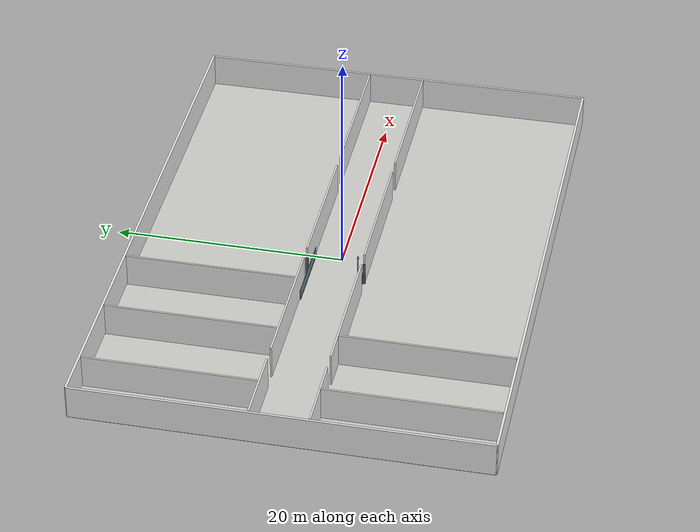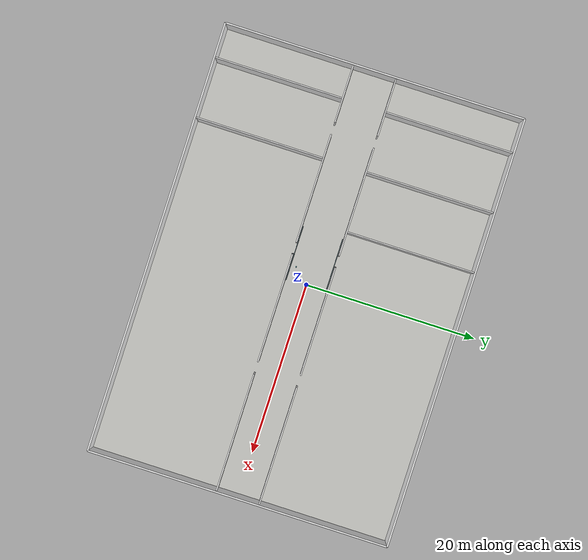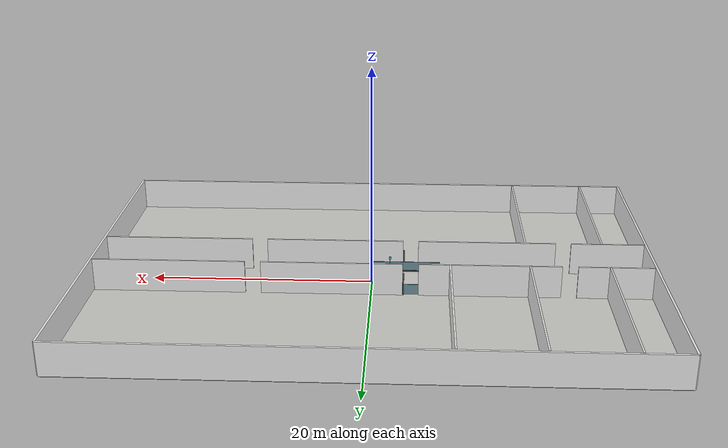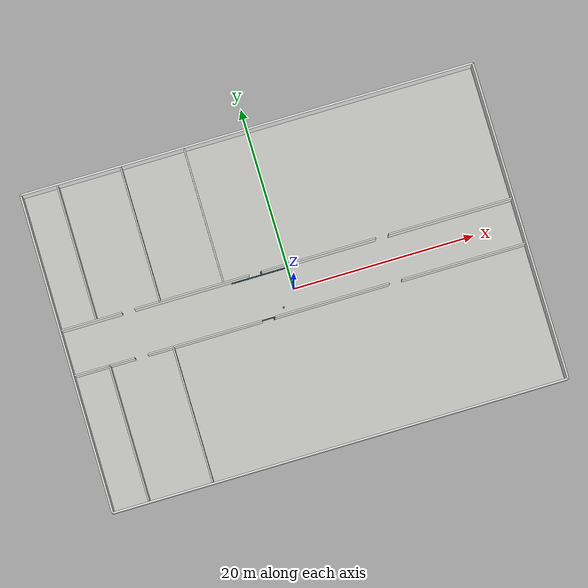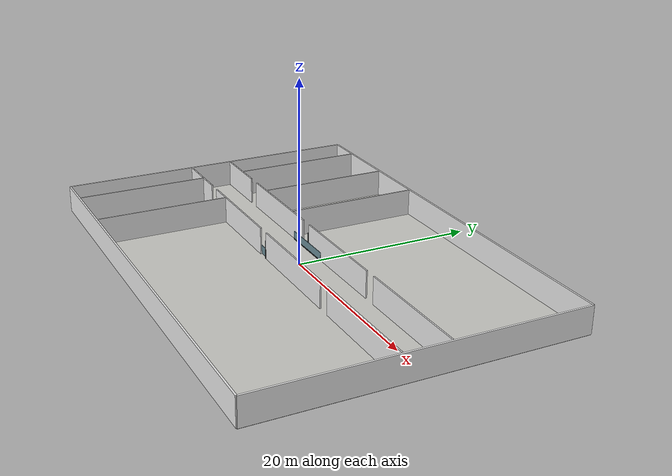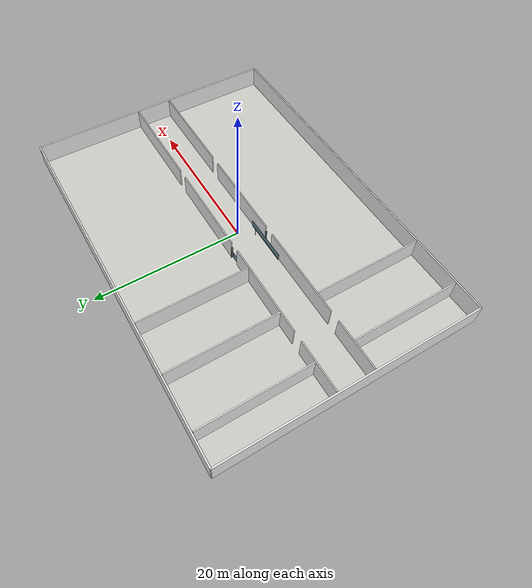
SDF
<sdf version="1.6">
 <world name="hospital">
  <include><uri>model://sun</uri></include>
  <model name="floor">
   <static>true</static>
   <link name="link">
    <pose>0 0 -0.05 0 0 0</pose>
    <collision name="c"><geometry><box><size>50 35 0.1</size></box></geometry></collision>
    <visual name="v">
     <geometry><box><size>50 35 0.1</size></box></geometry>
     <material>
      <script><uri>file://media/materials/scripts/gazebo.material</uri><name>Gazebo/CeilingTiled</name></script>
     </material>
    </visual>
   </link>
  </model>
  <model name="wall_n">
   <static>true</static>
   <link name="link">
    <pose>0 17.5 1.5 0 0 0</pose>
    <collision name="c"><geometry><box><size>50 0.2 3</size></box></geometry></collision>
    <visual name="v">
     <geometry><box><size>50 0.2 3</size></box></geometry>
     <material>
      <script><uri>file://media/materials/scripts/gazebo.material</uri><name>Gazebo/White</name></script>
     </material>
    </visual>
   </link>
  </model>
  <model name="wall_s">
   <static>true</static>
   <link name="link">
    <pose>0 -17.5 1.5 0 0 0</pose>
    <collision name="c"><geometry><box><size>50 0.2 3</size></box></geometry></collision>
    <visual name="v">
     <geometry><box><size>50 0.2 3</size></box></geometry>
     <material>
      <script><uri>file://media/materials/scripts/gazebo.material</uri><name>Gazebo/White</name></script>
     </material>
    </visual>
   </link>
  </model>
  <model name="wall_e">
   <static>true</static>
   <link name="link">
    <pose>25 0 1.5 0 0 0</pose>
    <collision name="c"><geometry><box><size>0.2 35 3</size></box></geometry></collision>
    <visual name="v">
     <geometry><box><size>0.2 35 3</size></box></geometry>
     <material>
      <script><uri>file://media/materials/scripts/gazebo.material</uri><name>Gazebo/White</name></script>
     </material>
    </visual>
   </link>
  </model>
  <model name="wall_w">
   <static>true</static>
   <link name="link">
    <pose>-25 0 1.5 0 0 0</pose>
    <collision name="c"><geometry><box><size>0.2 35 3</size></box></geometry></collision>
    <visual name="v">
     <geometry><box><size>0.2 35 3</size></box></geometry>
     <material>
      <script><uri>file://media/materials/scripts/gazebo.material</uri><name>Gazebo/White</name></script>
     </material>
    </visual>
   </link>
  </model>
  <model name="cw_25_1">
   <static>true</static>
   <link name="link">
    <pose>-21.525 2.5 1.5 0 0 0</pose>
    <collision name="c"><geometry><box><size>6.65 0.15 3</size></box></geometry></collision>
    <visual name="v">
     <geometry><box><size>6.65 0.15 3</size></box></geometry>
     <material>
      <script><uri>file://media/materials/scripts/gazebo.material</uri><name>Gazebo/White</name></script>
     </material>
    </visual>
   </link>
  </model>
  <model name="cw_25_2">
   <static>true</static>
   <link name="link">
    <pose>-10.5 2.5 1.5 0 0 0</pose>
    <collision name="c"><geometry><box><size>12.6 0.15 3</size></box></geometry></collision>
    <visual name="v">
     <geometry><box><size>12.6 0.15 3</size></box></geometry>
     <material>
      <script><uri>file://media/materials/scripts/gazebo.material</uri><name>Gazebo/White</name></script>
     </material>
    </visual>
   </link>
  </model>
  <model name="cw_25_3">
   <static>true</static>
   <link name="link">
    <pose>3.5 2.5 1.5 0 0 0</pose>
    <collision name="c"><geometry><box><size>12.6 0.15 3</size></box></geometry></collision>
    <visual name="v">
     <geometry><box><size>12.6 0.15 3</size></box></geometry>
     <material>
      <script><uri>file://media/materials/scripts/gazebo.material</uri><name>Gazebo/White</name></script>
     </material>
    </visual>
   </link>
  </model>
  <model name="cw_25_end">
   <static>true</static>
   <link name="link">
    <pose>18.025 2.5 1.5 0 0 0</pose>
    <collision name="c"><geometry><box><size>13.65 0.15 3</size></box></geometry></collision>
    <visual name="v">
     <geometry><box><size>13.65 0.15 3</size></box></geometry>
     <material>
      <script><uri>file://media/materials/scripts/gazebo.material</uri><name>Gazebo/White</name></script>
     </material>
    </visual>
   </link>
  </model>
  <model name="cw_-25_1">
   <static>true</static>
   <link name="link">
    <pose>-21.525 -2.5 1.5 0 0 0</pose>
    <collision name="c"><geometry><box><size>6.65 0.15 3</size></box></geometry></collision>
    <visual name="v">
     <geometry><box><size>6.65 0.15 3</size></box></geometry>
     <material>
      <script><uri>file://media/materials/scripts/gazebo.material</uri><name>Gazebo/White</name></script>
     </material>
    </visual>
   </link>
  </model>
  <model name="cw_-25_2">
   <static>true</static>
   <link name="link">
    <pose>-10.5 -2.5 1.5 0 0 0</pose>
    <collision name="c"><geometry><box><size>12.6 0.15 3</size></box></geometry></collision>
    <visual name="v">
     <geometry><box><size>12.6 0.15 3</size></box></geometry>
     <material>
      <script><uri>file://media/materials/scripts/gazebo.material</uri><name>Gazebo/White</name></script>
     </material>
    </visual>
   </link>
  </model>
  <model name="cw_-25_3">
   <static>true</static>
   <link name="link">
    <pose>3.5 -2.5 1.5 0 0 0</pose>
    <collision name="c"><geometry><box><size>12.6 0.15 3</size></box></geometry></collision>
    <visual name="v">
     <geometry><box><size>12.6 0.15 3</size></box></geometry>
     <material>
      <script><uri>file://media/materials/scripts/gazebo.material</uri><name>Gazebo/White</name></script>
     </material>
    </visual>
   </link>
  </model>
  <model name="cw_-25_end">
   <static>true</static>
   <link name="link">
    <pose>18.025 -2.5 1.5 0 0 0</pose>
    <collision name="c"><geometry><box><size>13.65 0.15 3</size></box></geometry></collision>
    <visual name="v">
     <geometry><box><size>13.65 0.15 3</size></box></geometry>
     <material>
      <script><uri>file://media/materials/scripts/gazebo.material</uri><name>Gazebo/White</name></script>
     </material>
    </visual>
   </link>
  </model>
  <model name="div_1">
   <static>true</static>
   <link name="link">
    <pose>-21 9.925 1.5 0 0 0</pose>
    <collision name="c"><geometry><box><size>0.15 14.85 3</size></box></geometry></collision>
    <visual name="v">
     <geometry><box><size>0.15 14.85 3</size></box></geometry>
     <material>
      <script><uri>file://media/materials/scripts/gazebo.material</uri><name>Gazebo/White</name></script>
     </material>
    </visual>
   </link>
  </model>
  <model name="div_2">
   <static>true</static>
   <link name="link">
    <pose>-21 -9.925 1.5 0 0 0</pose>
    <collision name="c"><geometry><box><size>0.15 14.85 3</size></box></geometry></collision>
    <visual name="v">
     <geometry><box><size>0.15 14.85 3</size></box></geometry>
     <material>
      <script><uri>file://media/materials/scripts/gazebo.material</uri><name>Gazebo/White</name></script>
     </material>
    </visual>
   </link>
  </model>
  <model name="div_3">
   <static>true</static>
   <link name="link">
    <pose>-14 9.925 1.5 0 0 0</pose>
    <collision name="c"><geometry><box><size>0.15 14.85 3</size></box></geometry></collision>
    <visual name="v">
     <geometry><box><size>0.15 14.85 3</size></box></geometry>
     <material>
      <script><uri>file://media/materials/scripts/gazebo.material</uri><name>Gazebo/White</name></script>
     </material>
    </visual>
   </link>
  </model>
  <model name="div_4">
   <static>true</static>
   <link name="link">
    <pose>-14 -9.925 1.5 0 0 0</pose>
    <collision name="c"><geometry><box><size>0.15 14.85 3</size></box></geometry></collision>
    <visual name="v">
     <geometry><box><size>0.15 14.85 3</size></box></geometry>
     <material>
      <script><uri>file://media/materials/scripts/gazebo.material</uri><name>Gazebo/White</name></script>
     </material>
    </visual>
   </link>
  </model>
  <model name="div_5">
   <static>true</static>
   <link name="link">
    <pose>-7 9.925 1.5 0 0 0</pose>
    <collision name="c"><geometry><box><size>0.15 14.85 3</size></box></geometry></collision>
    <visual name="v">
     <geometry><box><size>0.15 14.85 3</size></box></geometry>
     <material>
      <script><uri>file://media/materials/scripts/gazebo.material</uri><name>Gazebo/White</name></script>
     </material>
    </visual>
   </link>
  </model>
  <model name="enh_wainscot_3_0">
   <static>true</static>
   <pose>-3.0 -2.36 0.49 0 0 0</pose>
   <link name="link">
    <collision name="c"><geometry><box><size>6.4 0.05 0.95</size></box></geometry></collision>
    <visual name="v">
     <geometry><box><size>6.4 0.05 0.95</size></box></geometry>
     <material>
      <ambient>0.420 0.560 0.600 1</ambient>
      <diffuse>0.420 0.560 0.600 1</diffuse>
      <specular>0.1 0.1 0.1 1</specular>
     </material>
    </visual>
   </link>
  </model>
  <model name="enh_baseboard_3_0">
   <static>true</static>
   <pose>-3.0 -2.35 0.06 0 0 0</pose>
   <link name="link">
    <collision name="c"><geometry><box><size>6.4 0.06 0.12</size></box></geometry></collision>
    <visual name="v">
     <geometry><box><size>6.4 0.06 0.12</size></box></geometry>
     <material>
      <ambient>0.220 0.240 0.250 1</ambient>
      <diffuse>0.220 0.240 0.250 1</diffuse>
      <specular>0.1 0.1 0.1 1</specular>
     </material>
    </visual>
   </link>
  </model>
  <model name="enh_wainscot_3_1">
   <static>true</static>
   <pose>-3.0 2.36 0.49 0 0 0</pose>
   <link name="link">
    <collision name="c"><geometry><box><size>6.4 0.05 0.95</size></box></geometry></collision>
    <visual name="v">
     <geometry><box><size>6.4 0.05 0.95</size></box></geometry>
     <material>
      <ambient>0.420 0.560 0.600 1</ambient>
      <diffuse>0.420 0.560 0.600 1</diffuse>
      <specular>0.1 0.1 0.1 1</specular>
     </material>
    </visual>
   </link>
  </model>
  <model name="enh_baseboard_3_1">
   <static>true</static>
   <pose>-3.0 2.35 0.06 0 0 0</pose>
   <link name="link">
    <collision name="c"><geometry><box><size>6.4 0.06 0.12</size></box></geometry></collision>
    <visual name="v">
     <geometry><box><size>6.4 0.06 0.12</size></box></geometry>
     <material>
      <ambient>0.220 0.240 0.250 1</ambient>
      <diffuse>0.220 0.240 0.250 1</diffuse>
      <specular>0.1 0.1 0.1 1</specular>
     </material>
    </visual>
   </link>
  </model>
  <model name="enh_doorframe_1_-1_62">
   <static>true</static>
   <pose>-2.88 -2.5 1.02 0 0 0</pose>
   <link name="link">
    <collision name="c"><geometry><box><size>0.1 0.22 2.05</size></box></geometry></collision>
    <visual name="v">
     <geometry><box><size>0.1 0.22 2.05</size></box></geometry>
     <material>
      <ambient>0.350 0.370 0.380 1</ambient>
      <diffuse>0.350 0.370 0.380 1</diffuse>
      <specular>0.1 0.1 0.1 1</specular>
     </material>
    </visual>
   </link>
  </model>
  <model name="enh_doorframe_1_1_62">
   <static>true</static>
   <pose>-2.88 2.5 1.02 0 0 0</pose>
   <link name="link">
    <collision name="c"><geometry><box><size>0.1 0.22 2.05</size></box></geometry></collision>
    <visual name="v">
     <geometry><box><size>0.1 0.22 2.05</size></box></geometry>
     <material>
      <ambient>0.350 0.370 0.380 1</ambient>
      <diffuse>0.350 0.370 0.380 1</diffuse>
      <specular>0.1 0.1 0.1 1</specular>
     </material>
    </visual>
   </link>
  </model>
  <model name="enh_iv_pole">
   <static>true</static>
   <pose>-1.6 -1.7 0.875 0 0 0</pose>
   <link name="link">
    <collision name="c">
     <geometry><cylinder><radius>0.025</radius><length>1.75</length></cylinder></geometry>
    </collision>
    <visual name="v">
     <geometry><cylinder><radius>0.025</radius><length>1.75</length></cylinder></geometry>
     <material>
      <ambient>0.650 0.670 0.700 1</ambient>
      <diffuse>0.650 0.670 0.700 1</diffuse>
      <specular>0.1 0.1 0.1 1</specular>
     </material>
    </visual>
   </link>
  </model>
  <model name="enh_iv_bag">
   <static>true</static>
   <pose>-1.6 -1.7 1.62 0 0 0</pose>
   <link name="link">
    <collision name="c"><geometry><box><size>0.18 0.1 0.26</size></box></geometry></collision>
    <visual name="v">
     <geometry><box><size>0.18 0.1 0.26</size></box></geometry>
     <material>
      <ambient>0.300 0.620 0.660 1</ambient>
      <diffuse>0.300 0.620 0.660 1</diffuse>
      <specular>0.1 0.1 0.1 1</specular>
     </material>
    </visual>
   </link>
  </model>
 </world>
</sdf>
